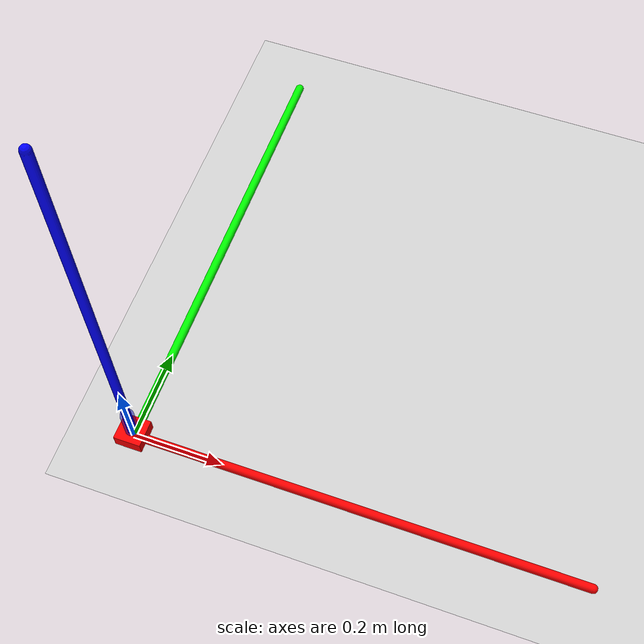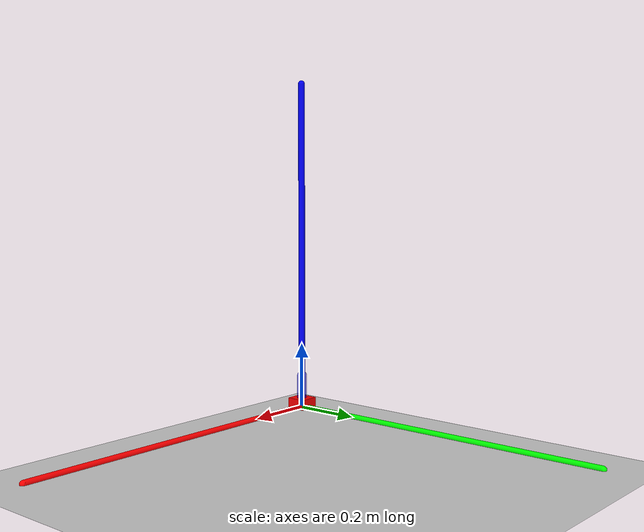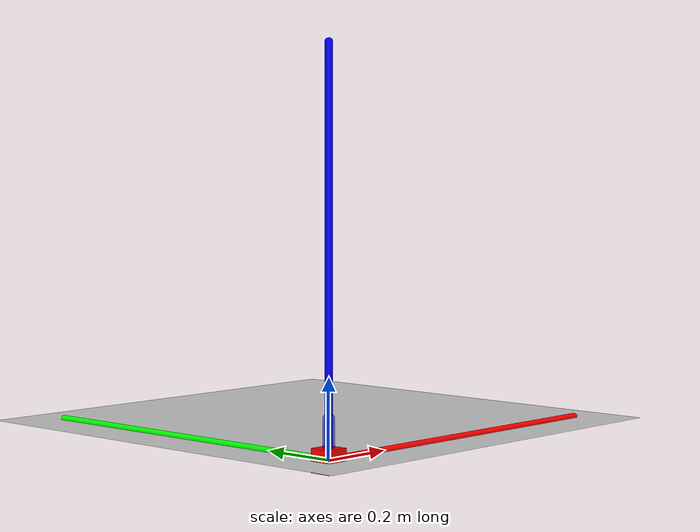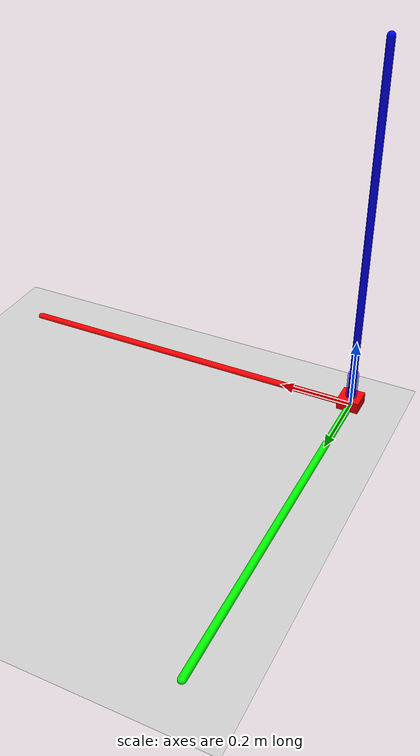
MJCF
<?xml version="1.0" ?>
<mujoco>
  <option timestep='0.01' gravity='0 0 0'/>
  <visual>
    <global offwidth='1920' offheight='1080'/>
  </visual>
  <asset>
    <texture type='skybox' builtin='gradient' rgb1='0.3 0.5 0.7' rgb2='0 0 0' width='512' height='512'/>
    <texture name='grid' type='2d' builtin='checker' width='512' height='512' rgb1='0.2 0.2 0.2' rgb2='0.3 0.3 0.3'/>
    <material name='grid' texture='grid' texrepeat='1 1' texuniform='true' reflectance='0.2'/>
  </asset>
  <worldbody>
    <light pos='0 0 3' dir='0 0 -1' directional='true' diffuse='0.8 0.8 0.8'/>
    <geom name='floor' type='plane' size='10 10 0.1' material='grid' rgba='0.8 0.8 0.8 1'/>

    <!-- XYZ Axis arrows at origin -->
    <geom name='axis_x' type='capsule' size='0.01' fromto='0 0 0 1 0 0' rgba='1 0 0 1'/>
    <geom name='axis_y' type='capsule' size='0.01' fromto='0 0 0 0 1 0' rgba='0 1 0 1'/>
    <geom name='axis_z' type='capsule' size='0.01' fromto='0 0 0 0 0 1' rgba='0 0 1 1'/>
    <body name='joint_0' pos='0 0 0'>
      <freejoint name='free_0'/>
      <geom name='sphere_0' type='box' size='0.03 0.03 0.03' rgba='1 0 0 1'/>
    </body>
    <body name='joint_1' pos='0 0 0'>
      <freejoint name='free_1'/>
      <geom name='sphere_1' type='box' size='0.03 0.03 0.03' rgba='1 0 0 1'/>
    </body>
    <body name='joint_2' pos='0 0 0'>
      <freejoint name='free_2'/>
      <geom name='sphere_2' type='box' size='0.03 0.03 0.03' rgba='1 0 0 1'/>
    </body>
    <body name='joint_3' pos='0 0 0'>
      <freejoint name='free_3'/>
      <geom name='sphere_3' type='box' size='0.03 0.03 0.03' rgba='1 0 0 1'/>
    </body>
    <body name='joint_4' pos='0 0 0'>
      <freejoint name='free_4'/>
      <geom name='sphere_4' type='box' size='0.03 0.03 0.03' rgba='1 0 0 1'/>
    </body>
    <body name='joint_5' pos='0 0 0'>
      <freejoint name='free_5'/>
      <geom name='sphere_5' type='box' size='0.03 0.03 0.03' rgba='1 0 0 1'/>
    </body>
    <body name='joint_6' pos='0 0 0'>
      <freejoint name='free_6'/>
      <geom name='sphere_6' type='box' size='0.03 0.03 0.03' rgba='1 0 0 1'/>
    </body>
    <body name='joint_7' pos='0 0 0'>
      <freejoint name='free_7'/>
      <geom name='sphere_7' type='box' size='0.03 0.03 0.03' rgba='1 0 0 1'/>
    </body>
    <body name='joint_8' pos='0 0 0'>
      <freejoint name='free_8'/>
      <geom name='sphere_8' type='box' size='0.03 0.03 0.03' rgba='1 0 0 1'/>
    </body>
    <body name='joint_9' pos='0 0 0'>
      <freejoint name='free_9'/>
      <geom name='sphere_9' type='box' size='0.03 0.03 0.03' rgba='1 0 0 1'/>
    </body>
    <body name='joint_10' pos='0 0 0'>
      <freejoint name='free_10'/>
      <geom name='sphere_10' type='box' size='0.03 0.03 0.03' rgba='1 0 0 1'/>
    </body>
    <body name='joint_11' pos='0 0 0'>
      <freejoint name='free_11'/>
      <geom name='sphere_11' type='box' size='0.03 0.03 0.03' rgba='1 0 0 1'/>
    </body>
    <body name='joint_12' pos='0 0 0'>
      <freejoint name='free_12'/>
      <geom name='sphere_12' type='box' size='0.03 0.03 0.03' rgba='1 0 0 1'/>
    </body>
    <body name='joint_13' pos='0 0 0'>
      <freejoint name='free_13'/>
      <geom name='sphere_13' type='box' size='0.03 0.03 0.03' rgba='1 0 0 1'/>
    </body>
    <body name='joint_14' pos='0 0 0'>
      <freejoint name='free_14'/>
      <geom name='sphere_14' type='box' size='0.03 0.03 0.03' rgba='1 0 0 1'/>
    </body>
    <body name='joint_15' pos='0 0 0'>
      <freejoint name='free_15'/>
      <geom name='sphere_15' type='box' size='0.03 0.03 0.03' rgba='1 0 0 1'/>
    </body>
    <body name='joint_16' pos='0 0 0'>
      <freejoint name='free_16'/>
      <geom name='sphere_16' type='box' size='0.03 0.03 0.03' rgba='1 0 0 1'/>
    </body>
    <body name='joint_17' pos='0 0 0'>
      <freejoint name='free_17'/>
      <geom name='sphere_17' type='box' size='0.03 0.03 0.03' rgba='1 0 0 1'/>
    </body>
    <body name='joint_18' pos='0 0 0'>
      <freejoint name='free_18'/>
      <geom name='sphere_18' type='box' size='0.03 0.03 0.03' rgba='1 0 0 1'/>
    </body>
    <body name='joint_19' pos='0 0 0'>
      <freejoint name='free_19'/>
      <geom name='sphere_19' type='box' size='0.03 0.03 0.03' rgba='1 0 0 1'/>
    </body>
    <body name='joint_20' pos='0 0 0'>
      <freejoint name='free_20'/>
      <geom name='sphere_20' type='box' size='0.03 0.03 0.03' rgba='1 0 0 1'/>
    </body>
    <body name='joint_21' pos='0 0 0'>
      <freejoint name='free_21'/>
      <geom name='sphere_21' type='box' size='0.03 0.03 0.03' rgba='1 0 0 1'/>
    </body>
    <body name='bone_0_1' pos='0 0 0' mocap='true'>
      <geom name='bone_0_1_geom' type='capsule' size='0.015' fromto='0 0 0 0 0 0.1' rgba='0 0 1 0.5'/>
    </body>
    <body name='bone_1_2' pos='0 0 0' mocap='true'>
      <geom name='bone_1_2_geom' type='capsule' size='0.015' fromto='0 0 0 0 0 0.1' rgba='0 0 1 0.5'/>
    </body>
    <body name='bone_2_3' pos='0 0 0' mocap='true'>
      <geom name='bone_2_3_geom' type='capsule' size='0.015' fromto='0 0 0 0 0 0.1' rgba='0 0 1 0.5'/>
    </body>
    <body name='bone_3_4' pos='0 0 0' mocap='true'>
      <geom name='bone_3_4_geom' type='capsule' size='0.015' fromto='0 0 0 0 0 0.1' rgba='0 0 1 0.5'/>
    </body>
    <body name='bone_0_5' pos='0 0 0' mocap='true'>
      <geom name='bone_0_5_geom' type='capsule' size='0.015' fromto='0 0 0 0 0 0.1' rgba='0 0 1 0.5'/>
    </body>
    <body name='bone_5_6' pos='0 0 0' mocap='true'>
      <geom name='bone_5_6_geom' type='capsule' size='0.015' fromto='0 0 0 0 0 0.1' rgba='0 0 1 0.5'/>
    </body>
    <body name='bone_6_7' pos='0 0 0' mocap='true'>
      <geom name='bone_6_7_geom' type='capsule' size='0.015' fromto='0 0 0 0 0 0.1' rgba='0 0 1 0.5'/>
    </body>
    <body name='bone_7_8' pos='0 0 0' mocap='true'>
      <geom name='bone_7_8_geom' type='capsule' size='0.015' fromto='0 0 0 0 0 0.1' rgba='0 0 1 0.5'/>
    </body>
    <body name='bone_0_9' pos='0 0 0' mocap='true'>
      <geom name='bone_0_9_geom' type='capsule' size='0.015' fromto='0 0 0 0 0 0.1' rgba='0 0 1 0.5'/>
    </body>
    <body name='bone_9_10' pos='0 0 0' mocap='true'>
      <geom name='bone_9_10_geom' type='capsule' size='0.015' fromto='0 0 0 0 0 0.1' rgba='0 0 1 0.5'/>
    </body>
    <body name='bone_10_11' pos='0 0 0' mocap='true'>
      <geom name='bone_10_11_geom' type='capsule' size='0.015' fromto='0 0 0 0 0 0.1' rgba='0 0 1 0.5'/>
    </body>
    <body name='bone_11_12' pos='0 0 0' mocap='true'>
      <geom name='bone_11_12_geom' type='capsule' size='0.015' fromto='0 0 0 0 0 0.1' rgba='0 0 1 0.5'/>
    </body>
    <body name='bone_12_13' pos='0 0 0' mocap='true'>
      <geom name='bone_12_13_geom' type='capsule' size='0.015' fromto='0 0 0 0 0 0.1' rgba='0 0 1 0.5'/>
    </body>
    <body name='bone_11_14' pos='0 0 0' mocap='true'>
      <geom name='bone_11_14_geom' type='capsule' size='0.015' fromto='0 0 0 0 0 0.1' rgba='0 0 1 0.5'/>
    </body>
    <body name='bone_14_15' pos='0 0 0' mocap='true'>
      <geom name='bone_14_15_geom' type='capsule' size='0.015' fromto='0 0 0 0 0 0.1' rgba='0 0 1 0.5'/>
    </body>
    <body name='bone_15_16' pos='0 0 0' mocap='true'>
      <geom name='bone_15_16_geom' type='capsule' size='0.015' fromto='0 0 0 0 0 0.1' rgba='0 0 1 0.5'/>
    </body>
    <body name='bone_16_17' pos='0 0 0' mocap='true'>
      <geom name='bone_16_17_geom' type='capsule' size='0.015' fromto='0 0 0 0 0 0.1' rgba='0 0 1 0.5'/>
    </body>
    <body name='bone_11_18' pos='0 0 0' mocap='true'>
      <geom name='bone_11_18_geom' type='capsule' size='0.015' fromto='0 0 0 0 0 0.1' rgba='0 0 1 0.5'/>
    </body>
    <body name='bone_18_19' pos='0 0 0' mocap='true'>
      <geom name='bone_18_19_geom' type='capsule' size='0.015' fromto='0 0 0 0 0 0.1' rgba='0 0 1 0.5'/>
    </body>
    <body name='bone_19_20' pos='0 0 0' mocap='true'>
      <geom name='bone_19_20_geom' type='capsule' size='0.015' fromto='0 0 0 0 0 0.1' rgba='0 0 1 0.5'/>
    </body>
    <body name='bone_20_21' pos='0 0 0' mocap='true'>
      <geom name='bone_20_21_geom' type='capsule' size='0.015' fromto='0 0 0 0 0 0.1' rgba='0 0 1 0.5'/>
    </body>
  </worldbody>
</mujoco>
